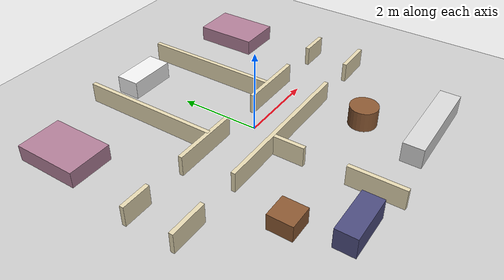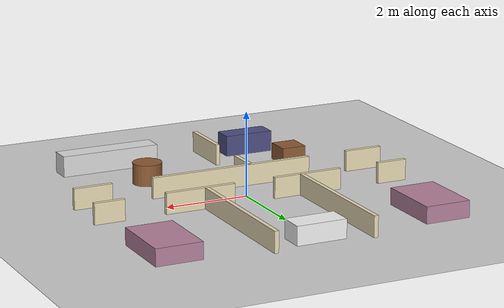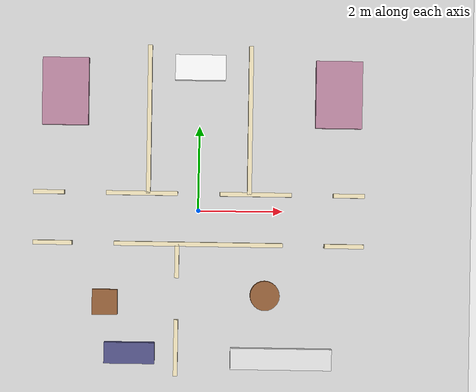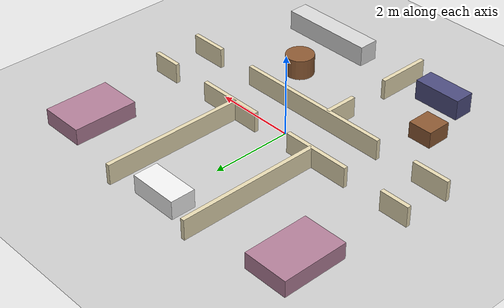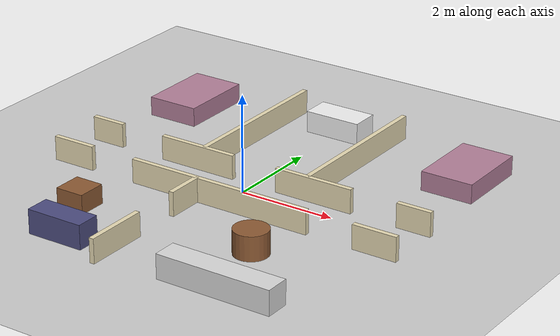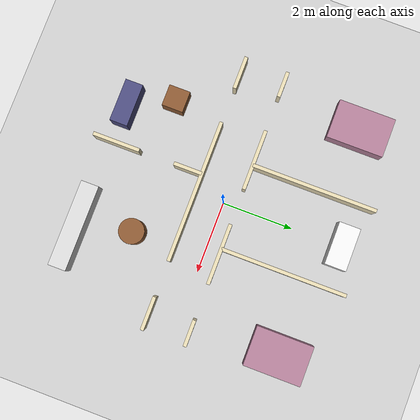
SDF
<sdf version="1.6">
 <world name="senaryo3_ev">
  <physics type="ode">
   <max_step_size>0.001</max_step_size>
   <real_time_factor>1</real_time_factor>
   <real_time_update_rate>1000</real_time_update_rate>
  </physics>
  <scene><shadows>false</shadows></scene>
  <include><uri>model://ground_plane</uri></include>
  <include><uri>model://sun</uri></include>
  <model name="ev_duvarlari">
   <static>true</static>
   <link name="link">
    <collision name="a1_c">
     <pose>-3.46 -0.8 0.25 0 0 0</pose>
     <geometry><box><size>0.93 0.1 0.5</size></box></geometry>
    </collision>
    <visual name="a1_v">
     <pose>-3.46 -0.8 0.25 0 0 0</pose>
     <geometry><box><size>0.93 0.1 0.5</size></box></geometry>
     <material><ambient>0.9 0.85 0.7 1</ambient><diffuse>0.9 0.85 0.7 1</diffuse></material>
    </visual>
    <collision name="a2_c">
     <pose>0.0 -0.8 0.25 0 0 0</pose>
     <geometry><box><size>4.0 0.1 0.5</size></box></geometry>
    </collision>
    <visual name="a2_v">
     <pose>0.0 -0.8 0.25 0 0 0</pose>
     <geometry><box><size>4.0 0.1 0.5</size></box></geometry>
     <material><ambient>0.9 0.85 0.7 1</ambient><diffuse>0.9 0.85 0.7 1</diffuse></material>
    </visual>
    <collision name="a3_c">
     <pose>3.46 -0.8 0.25 0 0 0</pose>
     <geometry><box><size>0.93 0.1 0.5</size></box></geometry>
    </collision>
    <visual name="a3_v">
     <pose>3.46 -0.8 0.25 0 0 0</pose>
     <geometry><box><size>0.93 0.1 0.5</size></box></geometry>
     <material><ambient>0.9 0.85 0.7 1</ambient><diffuse>0.9 0.85 0.7 1</diffuse></material>
    </visual>
    <collision name="b1_c">
     <pose>-3.56 0.4 0.25 0 0 0</pose>
     <geometry><box><size>0.73 0.1 0.5</size></box></geometry>
    </collision>
    <visual name="b1_v">
     <pose>-3.56 0.4 0.25 0 0 0</pose>
     <geometry><box><size>0.73 0.1 0.5</size></box></geometry>
     <material><ambient>0.9 0.85 0.7 1</ambient><diffuse>0.9 0.85 0.7 1</diffuse></material>
    </visual>
    <collision name="b2_c">
     <pose>-1.35 0.4 0.25 0 0 0</pose>
     <geometry><box><size>1.7 0.1 0.5</size></box></geometry>
    </collision>
    <visual name="b2_v">
     <pose>-1.35 0.4 0.25 0 0 0</pose>
     <geometry><box><size>1.7 0.1 0.5</size></box></geometry>
     <material><ambient>0.9 0.85 0.7 1</ambient><diffuse>0.9 0.85 0.7 1</diffuse></material>
    </visual>
    <collision name="b3_c">
     <pose>1.35 0.4 0.25 0 0 0</pose>
     <geometry><box><size>1.7 0.1 0.5</size></box></geometry>
    </collision>
    <visual name="b3_v">
     <pose>1.35 0.4 0.25 0 0 0</pose>
     <geometry><box><size>1.7 0.1 0.5</size></box></geometry>
     <material><ambient>0.9 0.85 0.7 1</ambient><diffuse>0.9 0.85 0.7 1</diffuse></material>
    </visual>
    <collision name="b4_c">
     <pose>3.56 0.4 0.25 0 0 0</pose>
     <geometry><box><size>0.73 0.1 0.5</size></box></geometry>
    </collision>
    <visual name="b4_v">
     <pose>3.56 0.4 0.25 0 0 0</pose>
     <geometry><box><size>0.73 0.1 0.5</size></box></geometry>
     <material><ambient>0.9 0.85 0.7 1</ambient><diffuse>0.9 0.85 0.7 1</diffuse></material>
    </visual>
    <collision name="c1_c">
     <pose>-0.5 -3.26 0.25 0 0 0</pose>
     <geometry><box><size>0.1 1.33 0.5</size></box></geometry>
    </collision>
    <visual name="c1_v">
     <pose>-0.5 -3.26 0.25 0 0 0</pose>
     <geometry><box><size>0.1 1.33 0.5</size></box></geometry>
     <material><ambient>0.9 0.85 0.7 1</ambient><diffuse>0.9 0.85 0.7 1</diffuse></material>
    </visual>
    <collision name="c2_c">
     <pose>-0.5 -1.2 0.25 0 0 0</pose>
     <geometry><box><size>0.1 0.8 0.5</size></box></geometry>
    </collision>
    <visual name="c2_v">
     <pose>-0.5 -1.2 0.25 0 0 0</pose>
     <geometry><box><size>0.1 0.8 0.5</size></box></geometry>
     <material><ambient>0.9 0.85 0.7 1</ambient><diffuse>0.9 0.85 0.7 1</diffuse></material>
    </visual>
    <collision name="d_c">
     <pose>-1.2 2.16 0.25 0 0 0</pose>
     <geometry><box><size>0.1 3.52 0.5</size></box></geometry>
    </collision>
    <visual name="d_v">
     <pose>-1.2 2.16 0.25 0 0 0</pose>
     <geometry><box><size>0.1 3.52 0.5</size></box></geometry>
     <material><ambient>0.9 0.85 0.7 1</ambient><diffuse>0.9 0.85 0.7 1</diffuse></material>
    </visual>
    <collision name="e_c">
     <pose>1.2 2.16 0.25 0 0 0</pose>
     <geometry><box><size>0.1 3.52 0.5</size></box></geometry>
    </collision>
    <visual name="e_v">
     <pose>1.2 2.16 0.25 0 0 0</pose>
     <geometry><box><size>0.1 3.52 0.5</size></box></geometry>
     <material><ambient>0.9 0.85 0.7 1</ambient><diffuse>0.9 0.85 0.7 1</diffuse></material>
    </visual>
   </link>
  </model>
  <model name="salon_koltuk">
   <static>true</static>
   <pose>-1.6 -3.4 0.25 0 0 0</pose>
   <link name="link">
    <collision name="collision"><geometry><box><size>1.2 0.5 0.5</size></box></geometry></collision>
    <visual name="visual">
     <geometry><box><size>1.2 0.5 0.5</size></box></geometry>
     <material><ambient>0.3 0.3 0.5 1</ambient><diffuse>0.3 0.3 0.5 1</diffuse></material>
    </visual>
   </link>
  </model>
  <model name="salon_sehpa">
   <static>true</static>
   <pose>-2.2 -2.2 0.2 0 0 0</pose>
   <link name="link">
    <collision name="collision"><geometry><box><size>0.6 0.6 0.4</size></box></geometry></collision>
    <visual name="visual">
     <geometry><box><size>0.6 0.6 0.4</size></box></geometry>
     <material><ambient>0.55 0.35 0.2 1</ambient><diffuse>0.55 0.35 0.2 1</diffuse></material>
    </visual>
   </link>
  </model>
  <model name="mutfak_tezgah">
   <static>true</static>
   <pose>2.0 -3.5 0.25 0 0 0</pose>
   <link name="link">
    <collision name="collision"><geometry><box><size>2.4 0.5 0.5</size></box></geometry></collision>
    <visual name="visual">
     <geometry><box><size>2.4 0.5 0.5</size></box></geometry>
     <material><ambient>0.85 0.85 0.85 1</ambient><diffuse>0.85 0.85 0.85 1</diffuse></material>
    </visual>
   </link>
  </model>
  <model name="mutfak_masa">
   <static>true</static>
   <pose>1.6 -2.0 0.25 0 0 0</pose>
   <link name="link">
    <collision name="collision">
     <geometry><cylinder><radius>0.35</radius><length>0.5</length></cylinder></geometry>
    </collision>
    <visual name="visual">
     <geometry><cylinder><radius>0.35</radius><length>0.5</length></cylinder></geometry>
     <material><ambient>0.55 0.35 0.2 1</ambient><diffuse>0.55 0.35 0.2 1</diffuse></material>
    </visual>
   </link>
  </model>
  <model name="yatak_1">
   <static>true</static>
   <pose>-3.2 2.8 0.2 0 0 0</pose>
   <link name="link">
    <collision name="collision"><geometry><box><size>1.1 1.6 0.4</size></box></geometry></collision>
    <visual name="visual">
     <geometry><box><size>1.1 1.6 0.4</size></box></geometry>
     <material><ambient>0.7 0.5 0.6 1</ambient><diffuse>0.7 0.5 0.6 1</diffuse></material>
    </visual>
   </link>
  </model>
  <model name="banyo_kuvet">
   <static>true</static>
   <pose>0.0 3.4 0.225 0 0 0</pose>
   <link name="link">
    <collision name="collision"><geometry><box><size>1.2 0.6 0.45</size></box></geometry></collision>
    <visual name="visual">
     <geometry><box><size>1.2 0.6 0.45</size></box></geometry>
     <material><ambient>0.95 0.95 0.95 1</ambient><diffuse>0.95 0.95 0.95 1</diffuse></material>
    </visual>
   </link>
  </model>
  <model name="yatak_2">
   <static>true</static>
   <pose>3.3 2.8 0.2 0 0 0</pose>
   <link name="link">
    <collision name="collision"><geometry><box><size>1.1 1.6 0.4</size></box></geometry></collision>
    <visual name="visual">
     <geometry><box><size>1.1 1.6 0.4</size></box></geometry>
     <material><ambient>0.7 0.5 0.6 1</ambient><diffuse>0.7 0.5 0.6 1</diffuse></material>
    </visual>
   </link>
  </model>
 </world>
</sdf>
